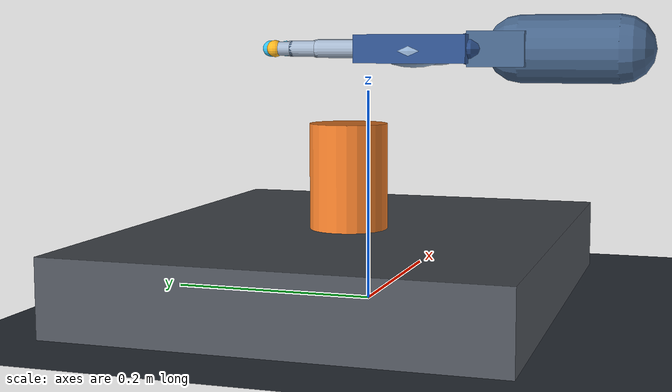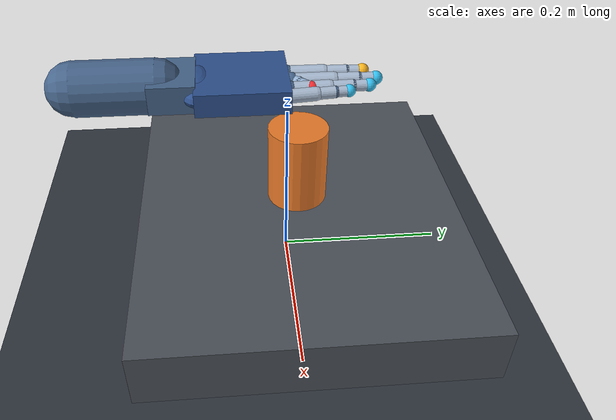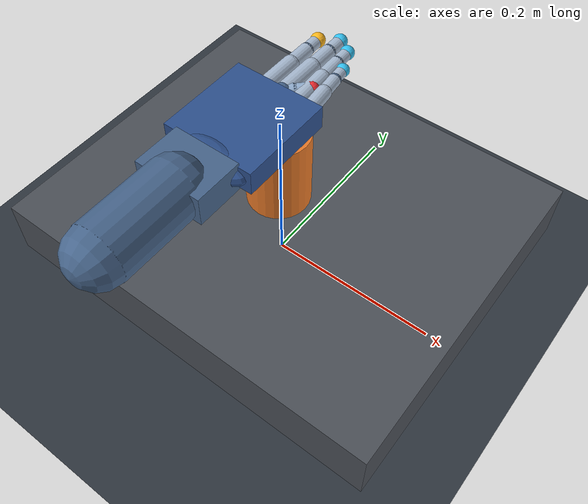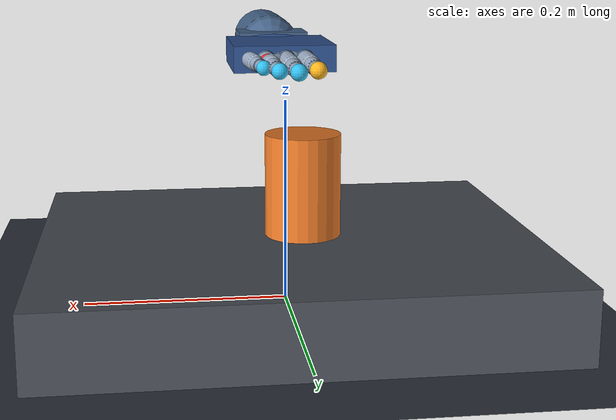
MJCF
<mujoco model="humanoid_virtual_dexterous_hand_v02">
  <!--
    v0.2 可视化仿人手：15 个屈伸关节，保持与 robot_hand.yaml 的关节命名一致。
    这是用于动作映射验证的工程模型，不是 CasiaHand 官方 MJCF。
  -->
  <compiler angle="radian" autolimits="true"/>
  <option timestep="0.003" gravity="0 0 -9.81" integrator="implicitfast"/>
  <statistic center="0 -0.005 0.17" extent="0.42"/>

  <visual>
    <headlight ambient="0.30 0.30 0.30" diffuse="0.72 0.72 0.72" specular="0.18 0.18 0.18"/>
    <rgba haze="0.10 0.14 0.18 1"/>
  </visual>

  <asset>
    <texture name="floor_tex" type="2d" builtin="checker" rgb1="0.16 0.18 0.21" rgb2="0.22 0.25 0.29" width="512" height="512"/>
    <material name="floor_mat" texture="floor_tex" texrepeat="6 6" reflectance="0.06"/>
    <material name="palm_mat" rgba="0.18 0.32 0.56 1"/>
    <material name="finger_mat" rgba="0.66 0.73 0.82 1"/>
    <material name="joint_mat" rgba="0.28 0.40 0.55 1"/>
    <material name="thumb_mat" rgba="0.58 0.69 0.82 1"/>
    <material name="object_mat" rgba="0.92 0.48 0.16 1"/>
    <material name="table_mat" rgba="0.30 0.32 0.35 1"/>
  </asset>

  <default>
    <joint damping="0.35" armature="0.003"/>
    <geom friction="1.1 0.08 0.01" density="650" contype="1" conaffinity="1" condim="4"/>
    <position kp="45" kv="2.4"/>
  </default>

  <worldbody>
    <light name="key_light" pos="0 -0.20 0.72" dir="0 0 -1" diffuse="0.85 0.85 0.85"/>
    <light name="fill_light" pos="0.30 0.18 0.42" dir="-0.5 -0.2 -1" diffuse="0.38 0.42 0.48"/>

    <!-- 三个固定观察相机。Python 默认选择 overview。 -->
    <camera name="overview" mode="targetbody" target="palm" pos="0.30 -0.38 0.38"/>
    <camera name="closeup" mode="targetbody" target="palm" pos="0.19 -0.24 0.30"/>
    <camera name="side" mode="targetbody" target="palm" pos="0.34 0.02 0.27"/>

    <geom name="floor" type="plane" size="0.60 0.60 0.02" material="floor_mat"/>

    <!-- 抓取台：顶面 z=0.07 m。 -->
    <body name="task_table" pos="0 0.015 0.035">
      <geom type="box" size="0.24 0.20 0.035" material="table_mat" contype="1" conaffinity="1"/>
    </body>

    <!--
      一个同时适合观察 PINCH 与 WRAP 的圆柱体。
      底部刚好位于抓取台顶面；freejoint 允许后续真实接触/抓取实验。
    -->
    <body name="grasp_object" pos="-0.015 0.015 0.120">
      <freejoint name="grasp_object_free"/>
      <geom name="grasp_cylinder" type="cylinder" size="0.037 0.050" material="object_mat"
            density="320" friction="1.35 0.12 0.01"/>
      <site name="object_center" type="sphere" size="0.004" rgba="1 1 1 0.9"/>
    </body>

    <!-- 非碰撞视觉标记：提示捏合时重点观察拇指/食指指尖。 -->
    <body name="visual_guides" pos="0 0 0">
      <site name="pinch_focus" type="sphere" pos="-0.037 0.003 0.184" size="0.010"
            rgba="0.20 0.90 0.45 0"/>
    </body>

    <!--
      手掌坐标系原点位于掌指关节附近，使手指根部位置与 robot_hand.yaml 的
      base_offsets_m 基本一致；手掌本体向 -Y 方向延伸。
    -->
    <body name="palm" pos="0 0 0.240">
      <!-- 掌面、掌根与鱼际区域，组合成比 v0.1 更接近人手的轮廓。 -->
      <geom name="palm_core" type="box" pos="0 -0.052 0" size="0.050 0.052 0.013" material="palm_mat"
            contype="0" conaffinity="0"/>
      <geom name="palm_heel" type="ellipsoid" pos="0 -0.101 0" size="0.046 0.022 0.015" material="palm_mat"
            contype="0" conaffinity="0"/>
      <geom name="thenar" type="ellipsoid" pos="-0.030 -0.052 -0.002" size="0.021 0.034 0.015" material="thumb_mat"
            contype="0" conaffinity="0"/>
      <geom name="hypothenar" type="ellipsoid" pos="0.031 -0.058 -0.002" size="0.017 0.031 0.014" material="finger_mat"
            contype="0" conaffinity="0"/>

      <!-- 固定腕部/前臂，仅用于增强观察方向感。 -->
      <geom name="wrist" type="box" pos="0 -0.128 0" size="0.036 0.026 0.016" material="joint_mat"
            contype="0" conaffinity="0"/>
      <geom name="forearm" type="capsule" fromto="0 -0.145 0 0 -0.235 0" size="0.031" material="joint_mat"
            contype="0" conaffinity="0"/>

      <!-- Thumb: 保持 v0.1/配置中的 -45° 基础外展方向；正关节角向 -Z 屈曲。 -->
      <body name="thumb1" pos="-0.033 -0.028 0" euler="0 0 -0.785398">
        <joint name="thumb_mcp" type="hinge" axis="-1 0 0" range="-0.174533 0.959931"/>
        <geom type="sphere" pos="0 0 0" size="0.0100" material="joint_mat"/>
        <geom type="capsule" fromto="0 0 0 0 0.032 0" size="0.0090" material="thumb_mat"/>
        <body name="thumb2" pos="0 0.032 0">
          <joint name="thumb_pip" type="hinge" axis="-1 0 0" range="0 1.308997"/>
          <geom type="sphere" size="0.0088" material="joint_mat"/>
          <geom type="capsule" fromto="0 0 0 0 0.024 0" size="0.0080" material="thumb_mat"/>
          <body name="thumb3" pos="0 0.024 0">
            <joint name="thumb_dip" type="hinge" axis="-1 0 0" range="0 1.134464"/>
            <geom type="sphere" size="0.0078" material="joint_mat"/>
            <geom type="capsule" fromto="0 0 0 0 0.018 0" size="0.0072" material="thumb_mat"/>
            <site name="thumb_tip" type="sphere" pos="0 0.018 0" size="0.0085" rgba="0.95 0.18 0.20 1"/>
          </body>
        </body>
      </body>

      <!-- Index -->
      <body name="index1" pos="-0.019 0 0">
        <joint name="index_mcp" type="hinge" axis="-1 0 0" range="0 1.483530"/>
        <geom type="sphere" size="0.0095" material="joint_mat"/>
        <geom type="capsule" fromto="0 0 0 0 0.042 0" size="0.0086" material="finger_mat"/>
        <body name="index2" pos="0 0.042 0">
          <joint name="index_pip" type="hinge" axis="-1 0 0" range="0 1.658063"/>
          <geom type="sphere" size="0.0083" material="joint_mat"/>
          <geom type="capsule" fromto="0 0 0 0 0.026 0" size="0.0075" material="finger_mat"/>
          <body name="index3" pos="0 0.026 0">
            <joint name="index_dip" type="hinge" axis="-1 0 0" range="0 1.221730"/>
            <geom type="sphere" size="0.0074" material="joint_mat"/>
            <geom type="capsule" fromto="0 0 0 0 0.019 0" size="0.0067" material="finger_mat"/>
            <site name="index_tip" type="sphere" pos="0 0.019 0" size="0.0080" rgba="1.00 0.72 0.12 1"/>
          </body>
        </body>
      </body>

      <!-- Middle -->
      <body name="middle1" pos="0 0.004 0">
        <joint name="middle_mcp" type="hinge" axis="-1 0 0" range="0 1.483530"/>
        <geom type="sphere" size="0.0097" material="joint_mat"/>
        <geom type="capsule" fromto="0 0 0 0 0.047 0" size="0.0088" material="finger_mat"/>
        <body name="middle2" pos="0 0.047 0">
          <joint name="middle_pip" type="hinge" axis="-1 0 0" range="0 1.658063"/>
          <geom type="sphere" size="0.0084" material="joint_mat"/>
          <geom type="capsule" fromto="0 0 0 0 0.028 0" size="0.0076" material="finger_mat"/>
          <body name="middle3" pos="0 0.028 0">
            <joint name="middle_dip" type="hinge" axis="-1 0 0" range="0 1.221730"/>
            <geom type="sphere" size="0.0075" material="joint_mat"/>
            <geom type="capsule" fromto="0 0 0 0 0.020 0" size="0.0068" material="finger_mat"/>
            <site name="middle_tip" type="sphere" pos="0 0.020 0" size="0.0078" rgba="0.20 0.76 0.95 1"/>
          </body>
        </body>
      </body>

      <!-- Ring -->
      <body name="ring1" pos="0.019 0 0" euler="0 0 0.034907">
        <joint name="ring_mcp" type="hinge" axis="-1 0 0" range="0 1.483530"/>
        <geom type="sphere" size="0.0093" material="joint_mat"/>
        <geom type="capsule" fromto="0 0 0 0 0.044 0" size="0.0083" material="finger_mat"/>
        <body name="ring2" pos="0 0.044 0">
          <joint name="ring_pip" type="hinge" axis="-1 0 0" range="0 1.658063"/>
          <geom type="sphere" size="0.0080" material="joint_mat"/>
          <geom type="capsule" fromto="0 0 0 0 0.026 0" size="0.0072" material="finger_mat"/>
          <body name="ring3" pos="0 0.026 0">
            <joint name="ring_dip" type="hinge" axis="-1 0 0" range="0 1.221730"/>
            <geom type="sphere" size="0.0071" material="joint_mat"/>
            <geom type="capsule" fromto="0 0 0 0 0.019 0" size="0.0064" material="finger_mat"/>
            <site name="ring_tip" type="sphere" pos="0 0.019 0" size="0.0075" rgba="0.20 0.76 0.95 1"/>
          </body>
        </body>
      </body>

      <!-- Little -->
      <body name="little1" pos="0.035 -0.007 0" euler="0 0 0.104720">
        <joint name="little_mcp" type="hinge" axis="-1 0 0" range="0 1.570796"/>
        <geom type="sphere" size="0.0087" material="joint_mat"/>
        <geom type="capsule" fromto="0 0 0 0 0.035 0" size="0.0078" material="finger_mat"/>
        <body name="little2" pos="0 0.035 0">
          <joint name="little_pip" type="hinge" axis="-1 0 0" range="0 1.658063"/>
          <geom type="sphere" size="0.0075" material="joint_mat"/>
          <geom type="capsule" fromto="0 0 0 0 0.021 0" size="0.0067" material="finger_mat"/>
          <body name="little3" pos="0 0.021 0">
            <joint name="little_dip" type="hinge" axis="-1 0 0" range="0 1.221730"/>
            <geom type="sphere" size="0.0067" material="joint_mat"/>
            <geom type="capsule" fromto="0 0 0 0 0.016 0" size="0.0060" material="finger_mat"/>
            <site name="little_tip" type="sphere" pos="0 0.016 0" size="0.0070" rgba="0.20 0.76 0.95 1"/>
          </body>
        </body>
      </body>
    </body>
  </worldbody>

  <actuator>
    <position name="act_thumb_mcp" joint="thumb_mcp" ctrlrange="-0.174533 0.959931"/>
    <position name="act_thumb_pip" joint="thumb_pip" ctrlrange="0 1.308997"/>
    <position name="act_thumb_dip" joint="thumb_dip" ctrlrange="0 1.134464"/>
    <position name="act_index_mcp" joint="index_mcp" ctrlrange="0 1.483530"/>
    <position name="act_index_pip" joint="index_pip" ctrlrange="0 1.658063"/>
    <position name="act_index_dip" joint="index_dip" ctrlrange="0 1.221730"/>
    <position name="act_middle_mcp" joint="middle_mcp" ctrlrange="0 1.483530"/>
    <position name="act_middle_pip" joint="middle_pip" ctrlrange="0 1.658063"/>
    <position name="act_middle_dip" joint="middle_dip" ctrlrange="0 1.221730"/>
    <position name="act_ring_mcp" joint="ring_mcp" ctrlrange="0 1.483530"/>
    <position name="act_ring_pip" joint="ring_pip" ctrlrange="0 1.658063"/>
    <position name="act_ring_dip" joint="ring_dip" ctrlrange="0 1.221730"/>
    <position name="act_little_mcp" joint="little_mcp" ctrlrange="0 1.570796"/>
    <position name="act_little_pip" joint="little_pip" ctrlrange="0 1.658063"/>
    <position name="act_little_dip" joint="little_dip" ctrlrange="0 1.221730"/>
  </actuator>
</mujoco>
